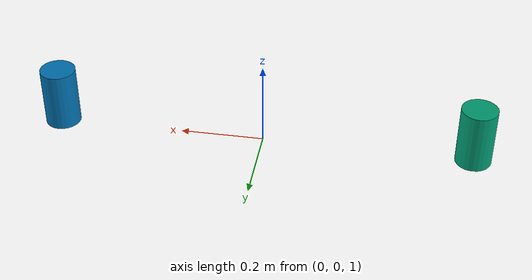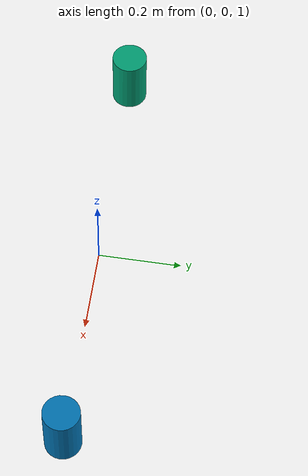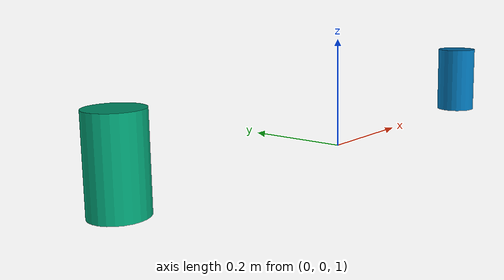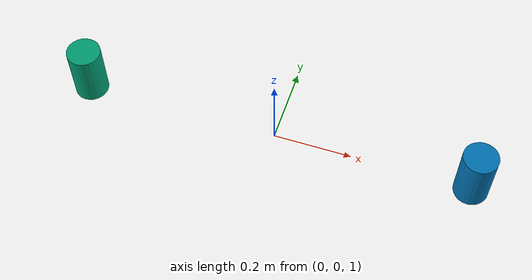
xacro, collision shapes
<?xml version="1.0"?>
<!-- 这是直接将两个雷达和base_link绑定在一起，指定位置 -->
<robot xmlns:xacro="http://www.ros.org/wiki/xacro" name="my_robot">
  <xacro:property name="M_PI" value="3.1415926535897931" />
  <!-- 将整个机器人固定到地面 -->
  <link name="world"/>
  <joint name="world_fixed" type="fixed">
    <parent link="world"/>
    <child link="base_link"/>
    <origin xyz="0 0 0" rpy="0 0 0"/>
  </joint>

  <link name="base_link"/>

  <!-- 导入Velodyne HDL-32E雷达的宏定义 -->
  <xacro:include filename="$(find velodyne_description)/urdf/HDL-32E.urdf.xacro" />
  <!-- HDL-32E.urdf -->

  <!-- 放置第一个HDL-32E雷达 -->
  <xacro:HDL-32E parent="base_link" name="velodyne1" topic="/points_raw1" hz="10" samples="775" lasers="500"
      min_angle="${M_PI/4}"
      max_angle="${3*M_PI/4}"
      gpu="true">
    <origin xyz=" -0.5 0 1" rpy="0 0 0" />
  </xacro:HDL-32E>

  <!-- 放置第二个HDL-32E雷达 -->
  <xacro:HDL-32E parent="base_link" name="velodyne2" topic="/points_raw2" hz="10" samples="775" lasers="500"
      min_angle="${M_PI/4}"
      max_angle="${3*M_PI/4}"
      gpu="true">
    <origin xyz=" 0.5 0 1" rpy="0 0 0" />
  </xacro:HDL-32E>

</robot>

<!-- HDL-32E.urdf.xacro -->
<robot xmlns:xacro="http://www.ros.org/wiki/xacro" name="HDL-32E">
  <xacro:property name="M_PI" value="3.1415926535897931" />
  <xacro:macro name="HDL-32E" params="*origin parent:=base_link name:=velodyne tf_prefix:='' topic:=/velodyne_points organize_cloud:=false hz:=10 lasers:=32 samples:=2187 collision_range:=0.3 min_range:=0.9 max_range:=130.0 noise:=0.008 min_angle:=-${M_PI} max_angle:=${M_PI} gpu:=false">

    <joint name="${name}_base_mount_joint" type="fixed">
      <xacro:insert_block name="origin" />
      <parent link="${parent}"/>
      <child link="${name}_base_link"/>
    </joint>

    <link name="${name}_base_link">
      <inertial>
        <mass value="1.0"/>
        <origin xyz="0 0 0.07212"/>
        <inertia ixx="${(1.0 * (3.0*0.04267*0.04267 + 0.14424*0.14424)) / 12.0}" ixy="0" ixz="0"
          iyy="${(1.0 * (3.0*0.04267*0.04267 + 0.14424*0.14424)) / 12.0}" iyz="0"
          izz="${0.5 * 1.0 * (0.04267*0.04267)}"/>
      </inertial>
      <visual>
        <geometry>
          <mesh filename="package://velodyne_description/meshes/HDL32E_base.dae" />
        </geometry>
      </visual>
      <collision>
        <origin rpy="0 0 0" xyz="0 0 0.07212"/>
        <geometry>
          <cylinder radius="0.04267" length="0.14424"/>
        </geometry>
      </collision>
    </link>

    <joint name="${name}_base_scan_joint" type="fixed" >
      <origin xyz="0 0 0.09081" rpy="0 0 0" />
      <parent link="${name}_base_link" />
      <child link="${name}"/>
    </joint>

    <link name="${name}">
      <inertial>
        <mass value="0.01"/>
        <origin xyz="0 0 0"/>
        <inertia ixx="1e-7" ixy="0" ixz="0" iyy="1e-7" iyz="0" izz="1e-7"/>
      </inertial>
      <visual>
        <origin xyz="0 0 -0.09081" rpy="0 0 0" />
        <geometry>
          <mesh filename="package://velodyne_description/meshes/HDL32E_scan.dae" />
        </geometry>
      </visual>
      <collision>
        <geometry>
          <sphere radius="0"/>
        </geometry>
      </collision>
    </link>

    <!-- Gazebo requires the velodyne_gazebo_plugins package -->
    <gazebo reference="${name}">
      <xacro:if value="${gpu}">
        <sensor type="gpu_ray" name="${name}-HDL32E">
          <pose>0 0 0 0 0 0</pose>
          <visualize>false</visualize>
          <update_rate>${hz}</update_rate>
          <ray>
            <scan>
              <horizontal>
                <samples>${samples}</samples>
                <resolution>1</resolution>
                <min_angle>${min_angle}</min_angle>
                <max_angle>${max_angle}</max_angle>
              </horizontal>
              <vertical>
                <samples>${lasers}</samples>
                <resolution>1</resolution>
                <min_angle>-${5.0*M_PI/180.0}</min_angle>
                <max_angle> ${85.0*M_PI/180.0}</max_angle>
              </vertical>
            </scan>
            <range>
              <min>${collision_range}</min>
              <max>${max_range+1}</max>
              <resolution>0.001</resolution>
            </range>
            <noise>
              <type>gaussian</type>
              <mean>0.0</mean>
              <stddev>0.0</stddev>
            </noise>
          </ray>
          <plugin name="gazebo_ros_laser_controller" filename="libgazebo_ros_velodyne_laser.so">
            <ros>
              <namespace>/${name}</namespace>
              <remapping>~/out:=${topic}</remapping>
            </ros>
            <tf_prefix>${tf_prefix}</tf_prefix>
            <frame_name>${name}</frame_name>
            <organize_cloud>${organize_cloud}</organize_cloud>
            <min_range>${min_range}</min_range>
            <max_range>${max_range}</max_range>
            <gaussian_noise>${noise}</gaussian_noise>
          </plugin>
        </sensor>
      </xacro:if>
      <xacro:unless value="${gpu}">
        <sensor type="ray" name="${name}-HDL32E">
          <pose>0 0 0 0 0 0</pose>
          <visualize>false</visualize>
          <update_rate>${hz}</update_rate>
          <ray>
            <scan>
              <horizontal>
                <samples>${samples}</samples>
                <resolution>1</resolution>
                <min_angle>${min_angle}</min_angle>
                <max_angle>${max_angle}</max_angle>
              </horizontal>
              <vertical>
                <samples>${lasers}</samples>
                <resolution>1</resolution>
                <min_angle>-${5.0*M_PI/180.0}</min_angle>
                <max_angle> ${85.0*M_PI/180.0}</max_angle>
              </vertical>
            </scan>
            <range>
              <min>${collision_range}</min>
              <max>${max_range+1}</max>
              <resolution>0.001</resolution>
            </range>
            <noise>
              <type>gaussian</type>
              <mean>0.0</mean>
              <stddev>0.0</stddev>
            </noise>
          </ray>
          <plugin name="gazebo_ros_laser_controller" filename="libgazebo_ros_velodyne_laser.so">
            <ros>
              <namespace>/${name}</namespace>
              <remapping>~/out:=${topic}</remapping>
            </ros>
            <tf_prefix>${tf_prefix}</tf_prefix>
            <frame_name>${name}</frame_name>
            <organize_cloud>${organize_cloud}</organize_cloud>
            <min_range>${min_range}</min_range>
            <max_range>${max_range}</max_range>
            <gaussian_noise>${noise}</gaussian_noise>
          </plugin>
        </sensor>
      </xacro:unless>
    </gazebo>

  </xacro:macro>
</robot>
